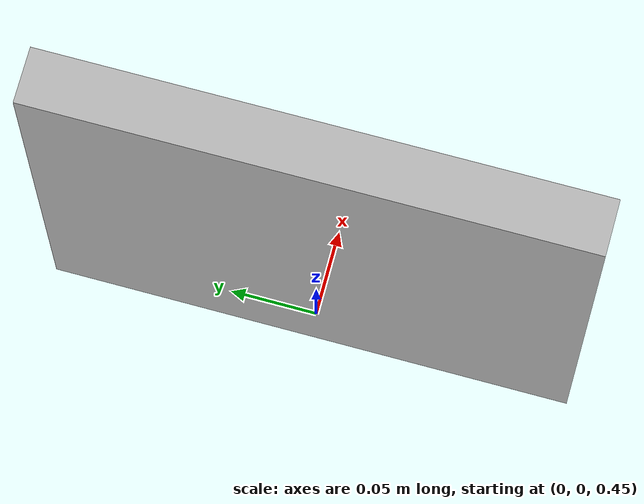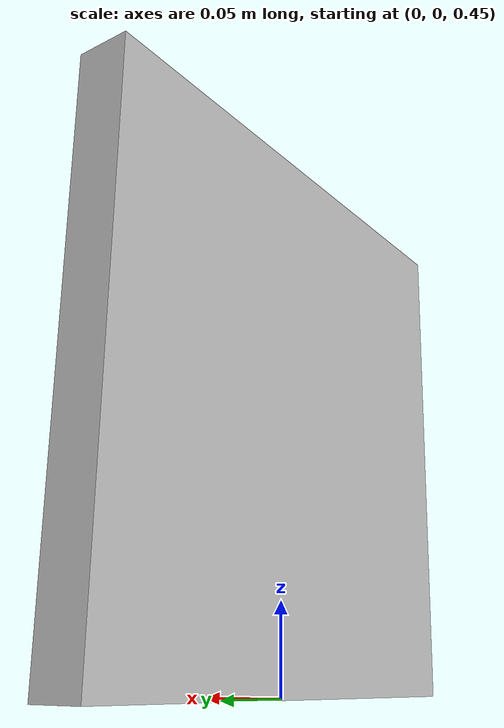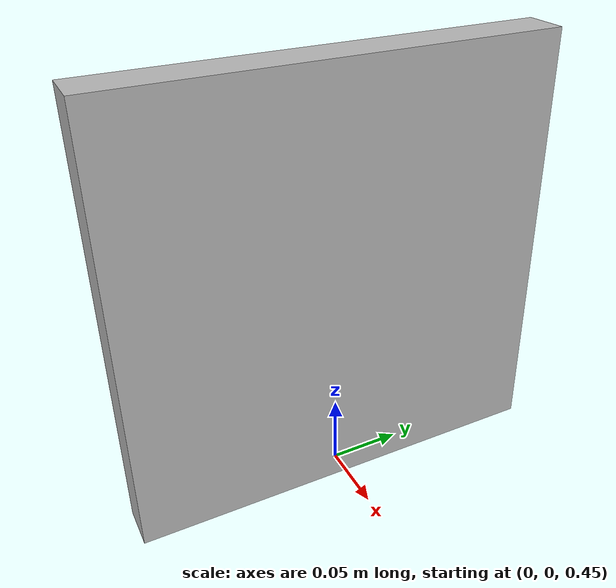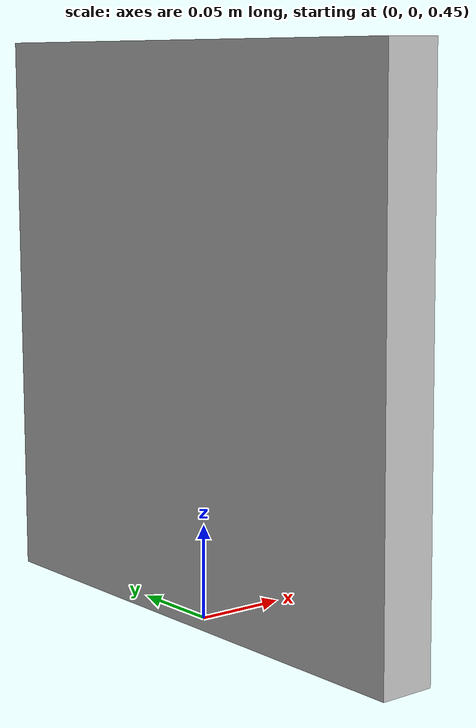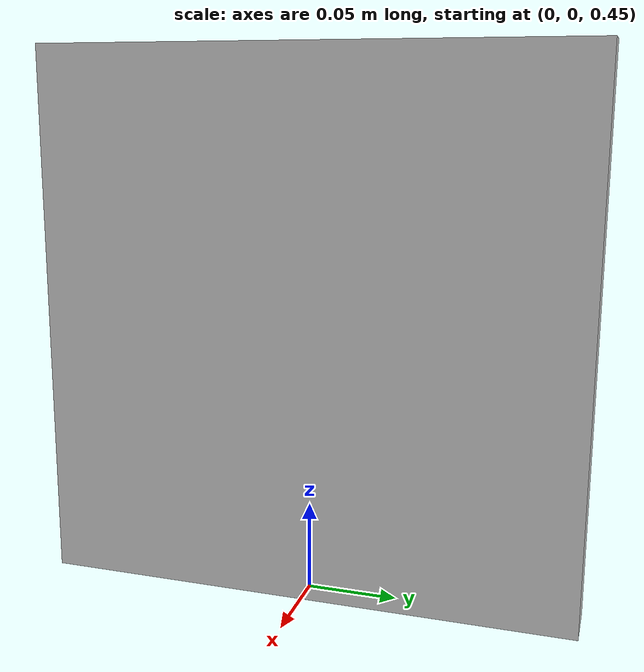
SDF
<?xml version="1.0"?>
<sdf version='1.6'>
  <model name='aruco_6'>
    <pose>0 0 0.6 0 1.56 0</pose>
    <link name='link'>
      <visual name='visual'>
        <geometry>
          <box>
            <size>0.3 0.3 0.03</size>
          </box>
        </geometry>
        <material>
          <script>
            <uri>model://aruco_6/materials/scripts</uri>
            <uri>model://aruco_6/materials/textures</uri>
           <name>arucoTexture_6</name>
          </script>
        </material>
      </visual>
      <collision name='collision'>
        <geometry>
          <box>
            <size>0.3 0.3 0.03</size>
          </box>
        </geometry>
      </collision>
    </link>
  </model>
</sdf>
